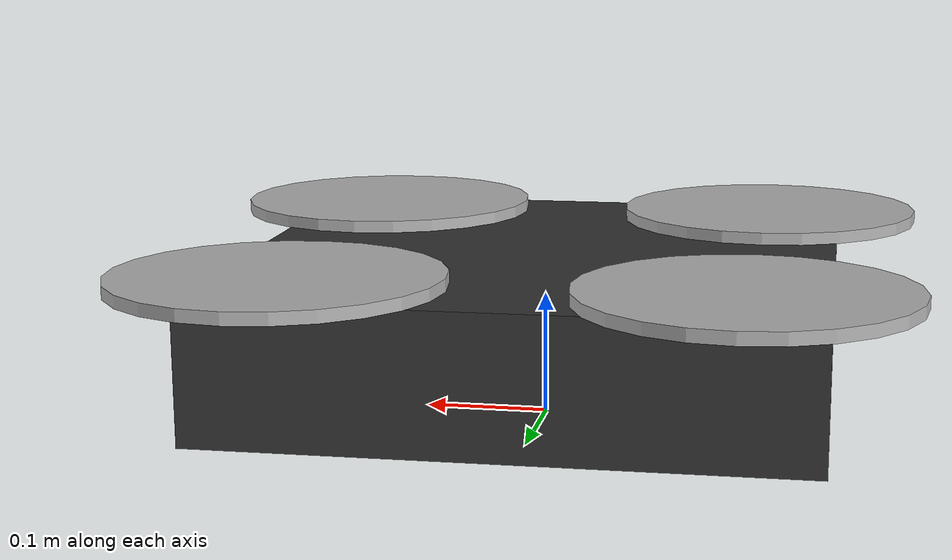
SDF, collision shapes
<?xml version="1.0" ?>
<sdf version="1.8">
  <model name="quadcopter">
    <pose>0 0 0.082 0 0 0</pose>

    <!-- Main body -->
    <link name="base_link">
      <inertial>
        <mass>1.5</mass>
        <inertia>
          <ixx>0.0347563</ixx>
          <ixy>0</ixy>
          <ixz>0</ixz>
          <iyy>0.0458929</iyy>
          <iyz>0</iyz>
          <izz>0.0977</izz>
        </inertia>
        <pose>0 0 0 0 0 0</pose>
      </inertial>

      <collision name="base_collision">
        <geometry>
          <box>
            <size>0.47 0.47 0.11</size>
          </box>
        </geometry>
      </collision>

      <visual name="base_visual">
        <geometry>
          <mesh>
            <uri>model://quadcopter/meshes/quadcopter_base.dae</uri>
            <scale>1 1 1</scale>
          </mesh>
        </geometry>
        <material>
          <ambient>0.2 0.2 0.2 1.0</ambient>
          <diffuse>0.2 0.2 0.2 1.0</diffuse>
          <specular>0.1 0.1 0.1 1.0</specular>
        </material>
      </visual>

      <!-- IMU sensor -->
      <sensor name="imu_sensor" type="imu">
        <always_on>1</always_on>
        <update_rate>200</update_rate>
        <imu>
          <angular_velocity>
            <x>
              <noise type="gaussian">
                <mean>0</mean>
                <stddev>0.009</stddev>
                <bias_mean>0.00075</bias_mean>
                <bias_stddev>0.005</bias_stddev>
              </noise>
            </x>
            <y>
              <noise type="gaussian">
                <mean>0</mean>
                <stddev>0.009</stddev>
                <bias_mean>0.00075</bias_mean>
                <bias_stddev>0.005</bias_stddev>
              </noise>
            </y>
            <z>
              <noise type="gaussian">
                <mean>0</mean>
                <stddev>0.009</stddev>
                <bias_mean>0.00075</bias_mean>
                <bias_stddev>0.005</bias_stddev>
              </noise>
            </z>
          </angular_velocity>
          <linear_acceleration>
            <x>
              <noise type="gaussian">
                <mean>0</mean>
                <stddev>0.021</stddev>
                <bias_mean>0.05</bias_mean>
                <bias_stddev>0.0075</bias_stddev>
              </noise>
            </x>
            <y>
              <noise type="gaussian">
                <mean>0</mean>
                <stddev>0.021</stddev>
                <bias_mean>0.05</bias_mean>
                <bias_stddev>0.0075</bias_stddev>
              </noise>
            </y>
            <z>
              <noise type="gaussian">
                <mean>0</mean>
                <stddev>0.021</stddev>
                <bias_mean>0.05</bias_mean>
                <bias_stddev>0.0075</bias_stddev>
              </noise>
            </z>
          </linear_acceleration>
        </imu>
      </sensor>

      <!-- GPS sensor -->
      <sensor name="gps_sensor" type="navsat">
        <always_on>1</always_on>
        <update_rate>10</update_rate>
        <navsat>
          <position_sensing>
            <horizontal>
              <noise type="gaussian">
                <mean>0</mean>
                <stddev>1.0</stddev>
              </noise>
            </horizontal>
            <vertical>
              <noise type="gaussian">
                <mean>0</mean>
                <stddev>1.5</stddev>
              </noise>
            </vertical>
          </position_sensing>
          <velocity_sensing>
            <horizontal>
              <noise type="gaussian">
                <mean>0</mean>
                <stddev>0.1</stddev>
              </noise>
            </horizontal>
            <vertical>
              <noise type="gaussian">
                <mean>0</mean>
                <stddev>0.15</stddev>
              </noise>
            </vertical>
          </velocity_sensing>
        </navsat>
      </sensor>

      <!-- Barometer sensor -->
      <sensor name="barometer_sensor" type="air_pressure">
        <always_on>1</always_on>
        <update_rate>20</update_rate>
        <air_pressure>
          <reference_altitude>0</reference_altitude>
          <pressure>
            <noise type="gaussian">
              <mean>0</mean>
              <stddev>0.5</stddev>
            </noise>
          </pressure>
        </air_pressure>
      </sensor>

      <!-- Magnetometer sensor -->
      <sensor name="magnetometer_sensor" type="magnetometer">
        <always_on>1</always_on>
        <update_rate>20</update_rate>
        <magnetometer>
          <x>
            <noise type="gaussian">
              <mean>0</mean>
              <stddev>0.0001</stddev>
            </noise>
          </x>
          <y>
            <noise type="gaussian">
              <mean>0</mean>
              <stddev>0.0001</stddev>
            </noise>
          </y>
          <z>
            <noise type="gaussian">
              <mean>0</mean>
              <stddev>0.0001</stddev>
            </noise>
          </z>
        </magnetometer>
      </sensor>

      <!-- Camera sensor -->
      <sensor name="camera_sensor" type="camera">
        <always_on>1</always_on>
        <update_rate>30</update_rate>
        <camera>
          <horizontal_fov>1.047</horizontal_fov>
          <image>
            <width>1280</width>
            <height>720</height>
            <format>R8G8B8</format>
          </image>
          <clip>
            <near>0.1</near>
            <far>100</far>
          </clip>
          <noise>
            <type>gaussian</type>
            <mean>0</mean>
            <stddev>0.007</stddev>
          </noise>
        </camera>
        <pose>0.2 0 0 0 0.34 0</pose>
      </sensor>
    </link>

    <!-- Rotor 1 -->
    <link name="rotor_1">
      <pose>0.174 0.174 0.06 0 0 0</pose>
      <inertial>
        <mass>0.05</mass>
        <inertia>
          <ixx>0.0000913</ixx>
          <ixy>0</ixy>
          <ixz>0</ixz>
          <iyy>0.0000913</iyy>
          <iyz>0</iyz>
          <izz>0.0001803</izz>
        </inertia>
      </inertial>
      <collision name="rotor_1_collision">
        <geometry>
          <cylinder>
            <length>0.01</length>
            <radius>0.128</radius>
          </cylinder>
        </geometry>
      </collision>
      <visual name="rotor_1_visual">
        <geometry>
          <mesh>
            <uri>model://quadcopter/meshes/propeller_ccw.dae</uri>
            <scale>1 1 1</scale>
          </mesh>
        </geometry>
        <material>
          <ambient>0.7 0.7 0.7 1.0</ambient>
          <diffuse>0.7 0.7 0.7 1.0</diffuse>
          <specular>0.1 0.1 0.1 1.0</specular>
        </material>
      </visual>
    </link>

    <!-- Rotor 2 -->
    <link name="rotor_2">
      <pose>-0.174 0.174 0.06 0 0 0</pose>
      <inertial>
        <mass>0.05</mass>
        <inertia>
          <ixx>0.0000913</ixx>
          <ixy>0</ixy>
          <ixz>0</ixz>
          <iyy>0.0000913</iyy>
          <iyz>0</iyz>
          <izz>0.0001803</izz>
        </inertia>
      </inertial>
      <collision name="rotor_2_collision">
        <geometry>
          <cylinder>
            <length>0.01</length>
            <radius>0.128</radius>
          </cylinder>
        </geometry>
      </collision>
      <visual name="rotor_2_visual">
        <geometry>
          <mesh>
            <uri>model://quadcopter/meshes/propeller_cw.dae</uri>
            <scale>1 1 1</scale>
          </mesh>
        </geometry>
        <material>
          <ambient>0.7 0.7 0.7 1.0</ambient>
          <diffuse>0.7 0.7 0.7 1.0</diffuse>
          <specular>0.1 0.1 0.1 1.0</specular>
        </material>
      </visual>
    </link>

    <!-- Rotor 3 -->
    <link name="rotor_3">
      <pose>-0.174 -0.174 0.06 0 0 0</pose>
      <inertial>
        <mass>0.05</mass>
        <inertia>
          <ixx>0.0000913</ixx>
          <ixy>0</ixy>
          <ixz>0</ixz>
          <iyy>0.0000913</iyy>
          <iyz>0</iyz>
          <izz>0.0001803</izz>
        </inertia>
      </inertial>
      <collision name="rotor_3_collision">
        <geometry>
          <cylinder>
            <length>0.01</length>
            <radius>0.128</radius>
          </cylinder>
        </geometry>
      </collision>
      <visual name="rotor_3_visual">
        <geometry>
          <mesh>
            <uri>model://quadcopter/meshes/propeller_ccw.dae</uri>
            <scale>1 1 1</scale>
          </mesh>
        </geometry>
        <material>
          <ambient>0.7 0.7 0.7 1.0</ambient>
          <diffuse>0.7 0.7 0.7 1.0</diffuse>
          <specular>0.1 0.1 0.1 1.0</specular>
        </material>
      </visual>
    </link>

    <!-- Rotor 4 -->
    <link name="rotor_4">
      <pose>0.174 -0.174 0.06 0 0 0</pose>
      <inertial>
        <mass>0.05</mass>
        <inertia>
          <ixx>0.0000913</ixx>
          <ixy>0</ixy>
          <ixz>0</ixz>
          <iyy>0.0000913</iyy>
          <iyz>0</iyz>
          <izz>0.0001803</izz>
        </inertia>
      </inertial>
      <collision name="rotor_4_collision">
        <geometry>
          <cylinder>
            <length>0.01</length>
            <radius>0.128</radius>
          </cylinder>
        </geometry>
      </collision>
      <visual name="rotor_4_visual">
        <geometry>
          <mesh>
            <uri>model://quadcopter/meshes/propeller_cw.dae</uri>
            <scale>1 1 1</scale>
          </mesh>
        </geometry>
        <material>
          <ambient>0.7 0.7 0.7 1.0</ambient>
          <diffuse>0.7 0.7 0.7 1.0</diffuse>
          <specular>0.1 0.1 0.1 1.0</specular>
        </material>
      </visual>
    </link>

    <!-- Joint for rotor 1 -->
    <joint name="rotor_1_joint" type="revolute">
      <parent>base_link</parent>
      <child>rotor_1</child>
      <axis>
        <xyz>0 0 1</xyz>
        <limit>
          <lower>-1e+16</lower>
          <upper>1e+16</upper>
        </limit>
        <dynamics>
          <damping>0.002</damping>
        </dynamics>
      </axis>
      <physics>
        <ode>
          <implicit_spring_damper>1</implicit_spring_damper>
        </ode>
      </physics>
    </joint>

    <!-- Joint for rotor 2 -->
    <joint name="rotor_2_joint" type="revolute">
      <parent>base_link</parent>
      <child>rotor_2</child>
      <axis>
        <xyz>0 0 1</xyz>
        <limit>
          <lower>-1e+16</lower>
          <upper>1e+16</upper>
        </limit>
        <dynamics>
          <damping>0.002</damping>
        </dynamics>
      </axis>
      <physics>
        <ode>
          <implicit_spring_damper>1</implicit_spring_damper>
        </ode>
      </physics>
    </joint>

    <!-- Joint for rotor 3 -->
    <joint name="rotor_3_joint" type="revolute">
      <parent>base_link</parent>
      <child>rotor_3</child>
      <axis>
        <xyz>0 0 1</xyz>
        <limit>
          <lower>-1e+16</lower>
          <upper>1e+16</upper>
        </limit>
        <dynamics>
          <damping>0.002</damping>
        </dynamics>
      </axis>
      <physics>
        <ode>
          <implicit_spring_damper>1</implicit_spring_damper>
        </ode>
      </physics>
    </joint>

    <!-- Joint for rotor 4 -->
    <joint name="rotor_4_joint" type="revolute">
      <parent>base_link</parent>
      <child>rotor_4</child>
      <axis>
        <xyz>0 0 1</xyz>
        <limit>
          <lower>-1e+16</lower>
          <upper>1e+16</upper>
        </limit>
        <dynamics>
          <damping>0.002</damping>
        </dynamics>
      </axis>
      <physics>
        <ode>
          <implicit_spring_damper>1</implicit_spring_damper>
        </ode>
      </physics>
    </joint>

    <!-- Multicopter velocity controller plugin -->
    <plugin
      filename="ignition-gazebo-multicopter-motor-model-system"
      name="ignition::gazebo::systems::MulticopterMotorModel">
      <robotNamespace>quadcopter</robotNamespace>
      <jointName>rotor_1_joint</jointName>
      <linkName>rotor_1</linkName>
      <turningDirection>ccw</turningDirection>
      <timeConstantUp>0.0125</timeConstantUp>
      <timeConstantDown>0.025</timeConstantDown>
      <maxRotVelocity>1100</maxRotVelocity>
      <motorConstant>8.54858e-06</motorConstant>
      <momentConstant>0.016</momentConstant>
      <commandSubTopic>command/motor_speed</commandSubTopic>
      <motorNumber>0</motorNumber>
      <rotorDragCoefficient>0.000806428</rotorDragCoefficient>
      <rollingMomentCoefficient>1e-06</rollingMomentCoefficient>
      <motorSpeedPubTopic>motor_speed/0</motorSpeedPubTopic>
      <rotorVelocitySlowdownSim>10</rotorVelocitySlowdownSim>
      <motorType>velocity</motorType>
    </plugin>

    <plugin
      filename="ignition-gazebo-multicopter-motor-model-system"
      name="ignition::gazebo::systems::MulticopterMotorModel">
      <robotNamespace>quadcopter</robotNamespace>
      <jointName>rotor_2_joint</jointName>
      <linkName>rotor_2</linkName>
      <turningDirection>cw</turningDirection>
      <timeConstantUp>0.0125</timeConstantUp>
      <timeConstantDown>0.025</timeConstantDown>
      <maxRotVelocity>1100</maxRotVelocity>
      <motorConstant>8.54858e-06</motorConstant>
      <momentConstant>0.016</momentConstant>
      <commandSubTopic>command/motor_speed</commandSubTopic>
      <motorNumber>1</motorNumber>
      <rotorDragCoefficient>0.000806428</rotorDragCoefficient>
      <rollingMomentCoefficient>1e-06</rollingMomentCoefficient>
      <motorSpeedPubTopic>motor_speed/1</motorSpeedPubTopic>
      <rotorVelocitySlowdownSim>10</rotorVelocitySlowdownSim>
      <motorType>velocity</motorType>
    </plugin>

    <plugin
      filename="ignition-gazebo-multicopter-motor-model-system"
      name="ignition::gazebo::systems::MulticopterMotorModel">
      <robotNamespace>quadcopter</robotNamespace>
      <jointName>rotor_3_joint</jointName>
      <linkName>rotor_3</linkName>
      <turningDirection>ccw</turningDirection>
      <timeConstantUp>0.0125</timeConstantUp>
      <timeConstantDown>0.025</timeConstantDown>
      <maxRotVelocity>1100</maxRotVelocity>
      <motorConstant>8.54858e-06</motorConstant>
      <momentConstant>0.016</momentConstant>
      <commandSubTopic>command/motor_speed</commandSubTopic>
      <motorNumber>2</motorNumber>
      <rotorDragCoefficient>0.000806428</rotorDragCoefficient>
      <rollingMomentCoefficient>1e-06</rollingMomentCoefficient>
      <motorSpeedPubTopic>motor_speed/2</motorSpeedPubTopic>
      <rotorVelocitySlowdownSim>10</rotorVelocitySlowdownSim>
      <motorType>velocity</motorType>
    </plugin>

    <plugin
      filename="ignition-gazebo-multicopter-motor-model-system"
      name="ignition::gazebo::systems::MulticopterMotorModel">
      <robotNamespace>quadcopter</robotNamespace>
      <jointName>rotor_4_joint</jointName>
      <linkName>rotor_4</linkName>
      <turningDirection>cw</turningDirection>
      <timeConstantUp>0.0125</timeConstantUp>
      <timeConstantDown>0.025</timeConstantDown>
      <maxRotVelocity>1100</maxRotVelocity>
      <motorConstant>8.54858e-06</motorConstant>
      <momentConstant>0.016</momentConstant>
      <commandSubTopic>command/motor_speed</commandSubTopic>
      <motorNumber>3</motorNumber>
      <rotorDragCoefficient>0.000806428</rotorDragCoefficient>
      <rollingMomentCoefficient>1e-06</rollingMomentCoefficient>
      <motorSpeedPubTopic>motor_speed/3</motorSpeedPubTopic>
      <rotorVelocitySlowdownSim>10</rotorVelocitySlowdownSim>
      <motorType>velocity</motorType>
    </plugin>

    <!-- Multicopter control plugin -->
    <plugin
      filename="ignition-gazebo-multicopter-control-system"
      name="ignition::gazebo::systems::MulticopterVelocityControl">
      <robotNamespace>quadcopter</robotNamespace>
      <commandSubTopic>cmd_vel</commandSubTopic>
      <enableSubTopic>enable</enableSubTopic>
      <comLinkName>base_link</comLinkName>
      <velocityGain>2.7 2.7 2.7</velocityGain>
      <attitudeGain>2 2 2</attitudeGain>
      <angularRateGain>0.5 0.5 0.5</angularRateGain>
      <maximumLinearAcceleration>2 2 2</maximumLinearAcceleration>
      <maximumLinearVelocity>5 5 5</maximumLinearVelocity>
      <maximumAngularVelocity>3 3 3</maximumAngularVelocity>
      <linearVelocityNoiseMean>0 0 0</linearVelocityNoiseMean>
      <linearVelocityNoiseStdDev>0.1 0.1 0.1</linearVelocityNoiseStdDev>
      <angularVelocityNoiseMean>0 0 0</angularVelocityNoiseMean>
      <angularVelocityNoiseStdDev>0.05 0.05 0.05</angularVelocityNoiseStdDev>
      <rotorConfiguration>
        <rotor>
          <jointName>rotor_1_joint</jointName>
          <forceConstant>8.54858e-06</forceConstant>
          <momentConstant>0.016</momentConstant>
          <direction>1</direction>
        </rotor>
        <rotor>
          <jointName>rotor_2_joint</jointName>
          <forceConstant>8.54858e-06</forceConstant>
          <momentConstant>0.016</momentConstant>
          <direction>-1</direction>
        </rotor>
        <rotor>
          <jointName>rotor_3_joint</jointName>
          <forceConstant>8.54858e-06</forceConstant>
          <momentConstant>0.016</momentConstant>
          <direction>1</direction>
        </rotor>
        <rotor>
          <jointName>rotor_4_joint</jointName>
          <forceConstant>8.54858e-06</forceConstant>
          <momentConstant>0.016</momentConstant>
          <direction>-1</direction>
        </rotor>
      </rotorConfiguration>
    </plugin>

    <!-- Battery plugin -->
    <plugin
      filename="ignition-gazebo-linearbatteryplugin-system"
      name="ignition::gazebo::systems::LinearBatteryPlugin">
      <battery_name>linear_battery</battery_name>
      <voltage>12.694</voltage>
      <open_circuit_voltage_constant_coef>12.694</open_circuit_voltage_constant_coef>
      <open_circuit_voltage_linear_coef>-3.1424</open_circuit_voltage_linear_coef>
      <initial_charge>1.2009</initial_charge>
      <capacity>1.2009</capacity>
      <resistance>0.061523</resistance>
      <smooth_current_tau>1.9499</smooth_current_tau>
      <power_load>6.6</power_load>
      <power_draining_topic>linear_battery_state_draining</power_draining_topic>
      <power_supply_topic>linear_battery_state_supply</power_supply_topic>
      <enable_recharge>true</enable_recharge>
      <charging_time>3.0</charging_time>
    </plugin>
  </model>
</sdf>
